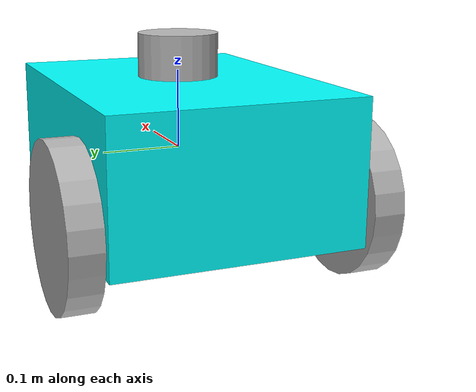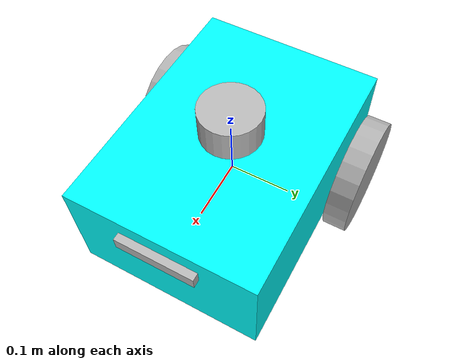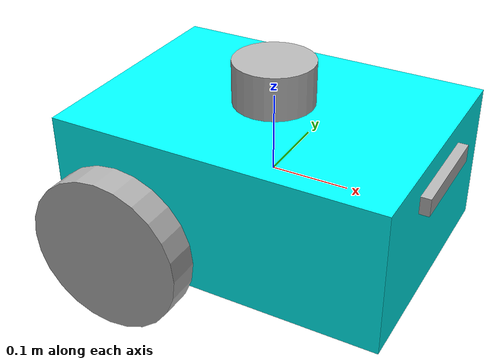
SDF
<?xml version="1.0" ?>
<!-- |    This document was autogenerated by xacro from /home/hrithik/work/agv_ws/src/diff_drive_sim/urdf/diff_drive_robot.xacro | -->
<!-- |    EDITING THIS FILE BY HAND IS NOT RECOMMENDED                                 | -->
<sdf version="1.8">
  <model canonical_link="base_link" name="diff_drive_robot">
    <!-- Robot Base -->
    <link name="base_link">
      <must_be_base_link>true</must_be_base_link>
      <visual name="base_link_visual">
        <geometry>
          <box>
            <size>
            0.42 0.31 0.18
          </size>
          </box>
        </geometry>
        <material>
          <ambient>0 1 1 1</ambient>
          <diffuse>0 1 1 1</diffuse>
        </material>
      </visual>
      <collision name="base_link_collision">
        <geometry>
          <box>
            <size>
            0.42 0.31 0.18
          </size>
          </box>
        </geometry>
      </collision>
    </link>
    <!-- Robot Footprint -->
    <link name="base_footprint">
      <pose relative_to="base_joint"/>
      <inertial>
        <pose>0 0 0 1.5707963267948966 0 1.5707963267948966</pose>
        <mass>15</mass>
        <inertia>
          <ixx>0.261</ixx>
          <ixy>0.0</ixy>
          <ixz>0.0</ixz>
          <iyy>0.34062499999999996</iyy>
          <iyz>0.0</iyz>
          <izz>0.16062500000000002</izz>
        </inertia>
      </inertial>
    </link>
    <joint name="base_joint" type="fixed">
      <parent>base_link</parent>
      <child>base_footprint</child>
      <pose relative_to="base_link">0.0 0.0 -0.15000000000000002 0 0 0</pose>
    </joint>
    <link name="drivewhl_l_link">
      <pose relative_to="drivewhl_l_joint"/>
      <visual name="drivewhl_l_link_visual">
        <pose relative_to="drivewhl_l_link">0 0 0 1.5707963267948966 0 0</pose>
        <geometry>
          <cylinder>
            <radius>0.1</radius>
            <length>0.04</length>
          </cylinder>
        </geometry>
        <material>
          <ambient>0.3 0.3 0.3 1.0</ambient>
          <diffuse>0.7 0.7 0.7 1.0</diffuse>
        </material>
      </visual>
      <collision name="drivewhl_l_link_collision">
        <pose relative_to="drivewhl_l_link">0 0 0 1.5707963267948966 0 0</pose>
        <geometry>
          <cylinder>
            <radius>0.1</radius>
            <length>0.04</length>
          </cylinder>
        </geometry>
        <surface>
          <friction>
            <ode>
              <mu>1.0</mu>    <!-- along one tangent direction -->
              <mu2>1.0</mu2>  <!-- along the other -->
              <slip1>0.0</slip1>
              <slip2>0.0</slip2>
            </ode>
          </friction>
        </surface>
      </collision>
      <inertial>
        <pose>0 0 0 1.5707963267948966 0 0</pose>
        <mass>0.5</mass>
        <inertia>
          <ixx>0.0013166666666666667</ixx>
          <ixy>0.0</ixy>
          <ixz>0.0</ixz>
          <iyy>0.0013166666666666667</iyy>
          <iyz>0.0</iyz>
          <izz>0.0025000000000000005</izz>
        </inertia>
      </inertial>
    </link>
    <joint name="drivewhl_l_joint" type="revolute">
      <parent>base_link</parent>
      <child>drivewhl_l_link</child>
      <pose relative_to="base_link">-0.12 0.18 -0.05 0 0 0</pose>
      <axis>
        <xyz>0 1 0</xyz>
        <limit>
          <lower>-inf</lower>
          <upper>inf</upper>
        </limit>
      </axis>
    </joint>
    <link name="drivewhl_r_link">
      <pose relative_to="drivewhl_r_joint"/>
      <visual name="drivewhl_r_link_visual">
        <pose relative_to="drivewhl_r_link">0 0 0 1.5707963267948966 0 0</pose>
        <geometry>
          <cylinder>
            <radius>0.1</radius>
            <length>0.04</length>
          </cylinder>
        </geometry>
        <material>
          <ambient>0.3 0.3 0.3 1.0</ambient>
          <diffuse>0.7 0.7 0.7 1.0</diffuse>
        </material>
      </visual>
      <collision name="drivewhl_r_link_collision">
        <pose relative_to="drivewhl_r_link">0 0 0 1.5707963267948966 0 0</pose>
        <geometry>
          <cylinder>
            <radius>0.1</radius>
            <length>0.04</length>
          </cylinder>
        </geometry>
        <surface>
          <friction>
            <ode>
              <mu>1.0</mu>    <!-- along one tangent direction -->
              <mu2>1.0</mu2>  <!-- along the other -->
              <slip1>0.0</slip1>
              <slip2>0.0</slip2>
            </ode>
          </friction>
        </surface>
      </collision>
      <inertial>
        <pose>0 0 0 1.5707963267948966 0 0</pose>
        <mass>0.5</mass>
        <inertia>
          <ixx>0.0013166666666666667</ixx>
          <ixy>0.0</ixy>
          <ixz>0.0</ixz>
          <iyy>0.0013166666666666667</iyy>
          <iyz>0.0</iyz>
          <izz>0.0025000000000000005</izz>
        </inertia>
      </inertial>
    </link>
    <joint name="drivewhl_r_joint" type="revolute">
      <parent>base_link</parent>
      <child>drivewhl_r_link</child>
      <pose relative_to="base_link">-0.12 -0.18 -0.05 0 0 0</pose>
      <axis>
        <xyz>0 1 0</xyz>
        <limit>
          <lower>-inf</lower>
          <upper>inf</upper>
        </limit>
      </axis>
    </joint>
    <link name="front_caster">
      <pose relative_to="caster_joint"/>
      <visual name="front_caster_visual">
        <geometry>
          <sphere>
            <radius>0.060000000000000026</radius>
          </sphere>
        </geometry>
        <material>
          <ambient>0 1 1 1</ambient>
          <diffuse>0 1 1 1</diffuse>
        </material>
      </visual>
      <collision name="front_caster_collision">
        <geometry>
          <sphere>
            <radius>0.060000000000000026</radius>
          </sphere>
        </geometry>
        <surface>
          <friction>
            <ode>
              <mu>0.001</mu>
              <mu2>0.001</mu2>
            </ode>
          </friction>
        </surface>
      </collision>
      <inertial>
        <mass>0.5</mass>
        <inertia>
          <ixx>0.0007200000000000006</ixx>
          <ixy>0.0</ixy>
          <ixz>0.0</ixz>
          <iyy>0.0007200000000000006</iyy>
          <iyz>0.0</iyz>
          <izz>0.0007200000000000006</izz>
        </inertia>
      </inertial>
    </link>
    <joint name="caster_joint" type="fixed">
      <parent>base_link</parent>
      <child>front_caster</child>
      <pose relative_to="base_link">0.14 0.0 -0.09 0 0 0</pose>
    </joint>
    <joint name="imu_joint" type="fixed">
      <parent>base_link</parent>
      <child>imu_link</child>
      <pose relative_to="base_link">0.0 0.0 0.01 0 0 0</pose>
    </joint>
    <link name="imu_link">
      <pose relative_to="imu_joint"/>
      <visual name="imu_link_visual">
        <geometry>
          <box>
            <size>
            0.1 0.1 0.1
          </size>
          </box>
        </geometry>
      </visual>
      <collision name="imu_link_collision">
        <geometry>
          <box>
            <size>
            0.1 0.1 0.1
          </size>
          </box>
        </geometry>
      </collision>
      <inertial>
        <pose>0 0 0 1.5707963267948966 0 1.5707963267948966</pose>
        <mass>0.1</mass>
        <inertia>
          <ixx>0.0001666666666666667</ixx>
          <ixy>0.0</ixy>
          <ixz>0.0</ixz>
          <iyy>0.0001666666666666667</iyy>
          <iyz>0.0</iyz>
          <izz>0.0001666666666666667</izz>
        </inertia>
      </inertial>
      <sensor name="imu_sensor" type="imu">
        <always_on>true</always_on>
        <update_rate>100</update_rate>
        <visualize>true</visualize>
        <topic>/demo/imu</topic>
        <gz_frame_id>imu_link</gz_frame_id>
        <imu>
          <angular_velocity>
            <x>
              <noise type="gaussian">
                <mean>0.0</mean>
                <stddev>2e-4</stddev>
                <bias_mean>0.0000075</bias_mean>
                <bias_stddev>0.0000008</bias_stddev>
              </noise>
            </x>
            <y>
              <noise type="gaussian">
                <mean>0.0</mean>
                <stddev>2e-4</stddev>
                <bias_mean>0.0000075</bias_mean>
                <bias_stddev>0.0000008</bias_stddev>
              </noise>
            </y>
            <z>
              <noise type="gaussian">
                <mean>0.0</mean>
                <stddev>2e-4</stddev>
                <bias_mean>0.0000075</bias_mean>
                <bias_stddev>0.0000008</bias_stddev>
              </noise>
            </z>
          </angular_velocity>
          <linear_acceleration>
            <x>
              <noise type="gaussian">
                <mean>0.0</mean>
                <stddev>1.7e-2</stddev>
                <bias_mean>0.1</bias_mean>
                <bias_stddev>0.001</bias_stddev>
              </noise>
            </x>
            <y>
              <noise type="gaussian">
                <mean>0.0</mean>
                <stddev>1.7e-2</stddev>
                <bias_mean>0.1</bias_mean>
                <bias_stddev>0.001</bias_stddev>
              </noise>
            </y>
            <z>
              <noise type="gaussian">
                <mean>0.0</mean>
                <stddev>1.7e-2</stddev>
                <bias_mean>0.1</bias_mean>
                <bias_stddev>0.001</bias_stddev>
              </noise>
            </z>
          </linear_acceleration>
        </imu>
      </sensor>
    </link>
    <plugin filename="gz-sim-diff-drive-system" name="gz::sim::systems::DiffDrive">
      <!-- wheels -->
      <left_joint>drivewhl_l_joint</left_joint>
      <right_joint>drivewhl_r_joint</right_joint>
      <!-- kinematics -->
      <wheel_separation>0.4</wheel_separation>
      <wheel_radius>0.1</wheel_radius>
      <!-- limits -->
      <max_linear_acceleration>0.1</max_linear_acceleration>
      <!-- input -->
      <topic>/cmd_vel</topic>
      <!-- output -->
      <odom_topic>/demo/odom</odom_topic>
      <tf_topic>/tf</tf_topic>
      <frame_id>odom</frame_id>
      <child_frame_id>base_link</child_frame_id>
    </plugin>
    <plugin filename="gz-sim-joint-state-publisher-system" name="gz::sim::systems::JointStatePublisher">
      <topic>joint_states</topic>
      <publish_rate>50.0</publish_rate>

    </plugin>
    <joint name="lidar_joint" type="fixed">
      <parent>base_link</parent>
      <child>lidar_link</child>
      <pose relative_to="base_link">0.0 0.0 0.12 0 0 0</pose>
    </joint>
    <link name="lidar_link">
      <pose relative_to="lidar_joint"/>
      <visual name="lidar_link_visual">
        <geometry>
          <cylinder>
            <radius>0.0508</radius>
            <length>0.055</length>
          </cylinder>
        </geometry>
      </visual>
      <collision name="lidar_link_collision">
        <geometry>
          <cylinder>
            <radius>0.0508</radius>
            <length>0.055</length>
          </cylinder>
        </geometry>
      </collision>
      <inertial>
        <pose>0 0 0 1.5707963267948966 0 0</pose>
        <mass>0.125</mass>
        <inertia>
          <ixx>0.00011215541666666665</ixx>
          <ixy>0.0</ixy>
          <ixz>0.0</ixz>
          <iyy>0.00011215541666666665</iyy>
          <iyz>0.0</iyz>
          <izz>0.00016129</izz>
        </inertia>
      </inertial>
      <sensor name="lidar" type="gpu_lidar">
        <always_on>true</always_on>
        <visualize>true</visualize>
        <update_rate>10</update_rate>
        <topic>/scan</topic>
        <gz_frame_id>lidar_link</gz_frame_id>
        <ray>
          <scan>
            <horizontal>
              <samples>360</samples>
              <resolution>1.000000</resolution>
              <min_angle>0.000000</min_angle>
              <max_angle>6.280000</max_angle>
            </horizontal>
          </scan>
          <range>
            <min>0.120000</min>
            <max>5</max>
            <resolution>0.015000</resolution>
          </range>
          <noise>
            <type>gaussian</type>
            <mean>0.0</mean>
            <stddev>0.01</stddev>
          </noise>
        </ray>
      </sensor>
    </link>
    <joint name="camera_joint" type="fixed">
      <parent>base_link</parent>
      <child>camera_link</child>
      <pose relative_to="base_link">0.215 0 0.05 0 0 0</pose>
    </joint>
    <link name="camera_link">
      <pose relative_to="camera_joint"/>
      <visual name="camera_link_visual">
        <geometry>
          <box>
            <size>
            0.015 0.130 0.0222
          </size>
          </box>
        </geometry>
      </visual>
      <collision name="camera_link_collision">
        <geometry>
          <box>
            <size>
            0.015 0.130 0.0222
          </size>
          </box>
        </geometry>
      </collision>
      <inertial>
        <pose>0 0 0 1.5707963267948966 0 1.5707963267948966</pose>
        <mass>0.035</mass>
        <inertia>
          <ixx>5.072911666666668e-05</ixx>
          <ixy>0.0</ixy>
          <ixz>0.0</ixz>
          <iyy>4.9947916666666673e-05</iyy>
          <iyz>0.0</iyz>
          <izz>2.0937e-06</izz>
        </inertia>
      </inertial>
      <sensor name="depth_camera" type="rgbd_camera">
        <always_on>true</always_on>
        <visualize>true</visualize>
        <update_rate>5.0</update_rate>
        <topic>/depth_camera</topic>
        <gz_frame_id>camera_link</gz_frame_id>
        <camera>
          <horizontal_fov>1.047198</horizontal_fov>
          <image>
            <width>640</width>
            <height>480</height>
          </image>
          <clip>
            <near>0.05</near>
            <far>3</far>
          </clip>
        </camera>
        <baseline>0.2</baseline>
        <pointCloudCutoff>0.5</pointCloudCutoff>
        <pointCloudCutoffMax>3.0</pointCloudCutoffMax>
        <distortionK1>0</distortionK1>
        <distortionK2>0</distortionK2>
        <distortionK3>0</distortionK3>
        <distortionT1>0</distortionT1>
        <distortionT2>0</distortionT2>
        <CxPrime>0</CxPrime>
        <Cx>0</Cx>
        <Cy>0</Cy>
        <focalLength>0</focalLength>
        <hackBaseline>0</hackBaseline>
      </sensor>
    </link>
  </model>
</sdf>
